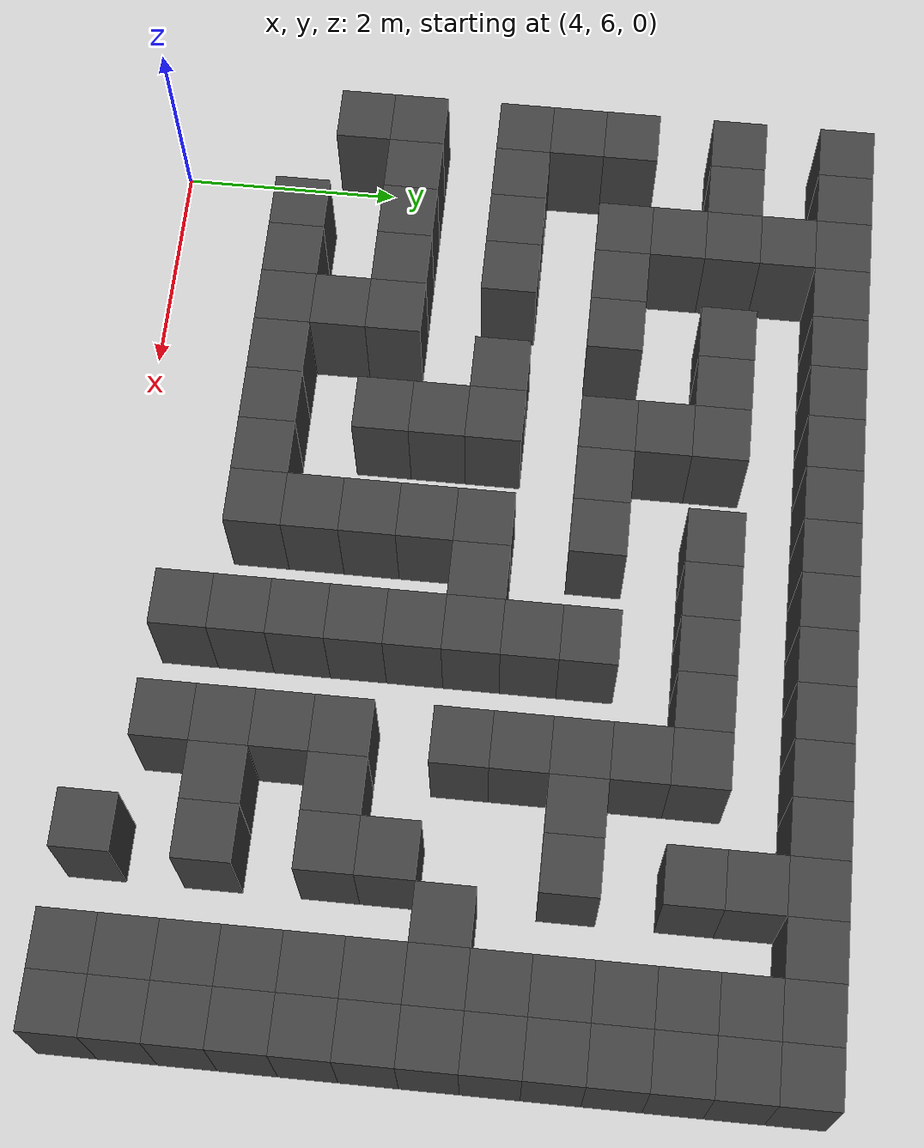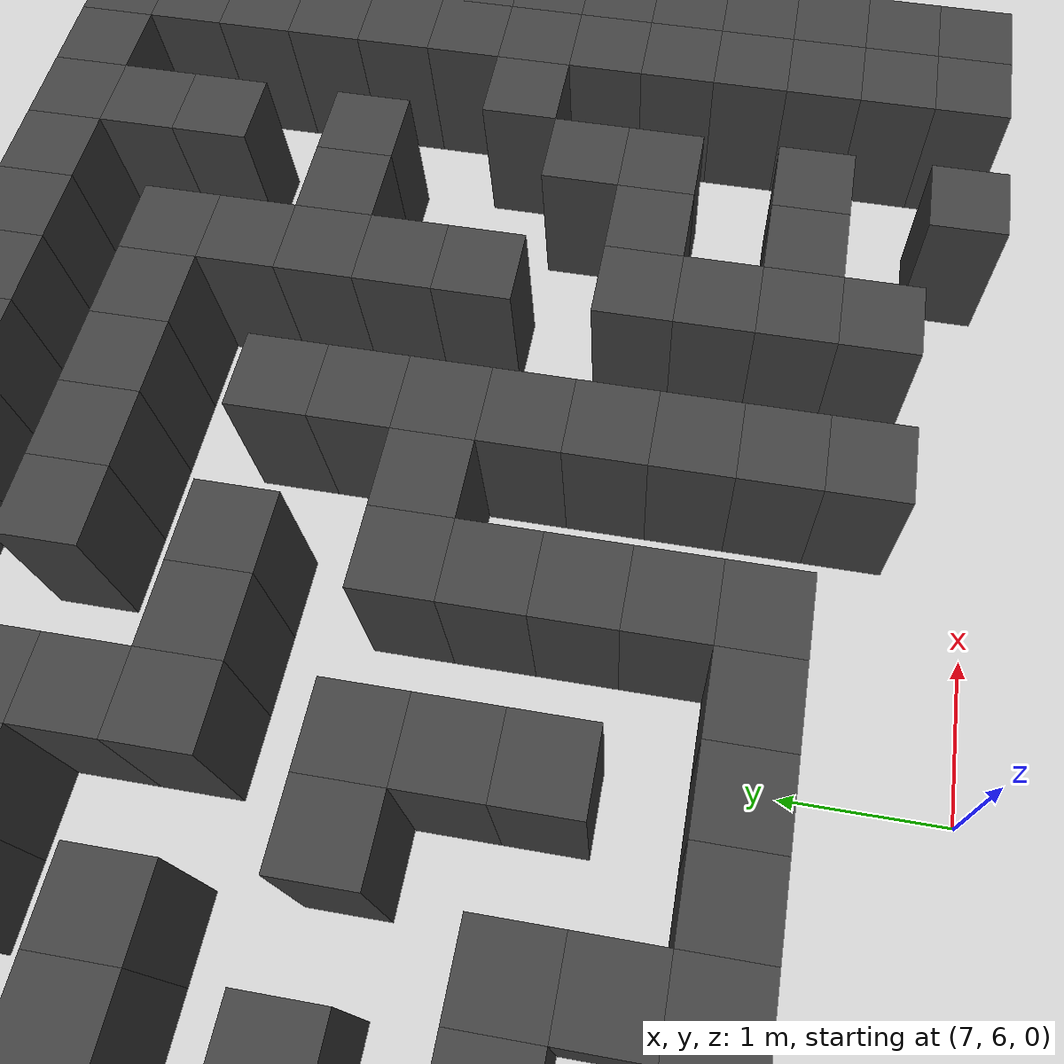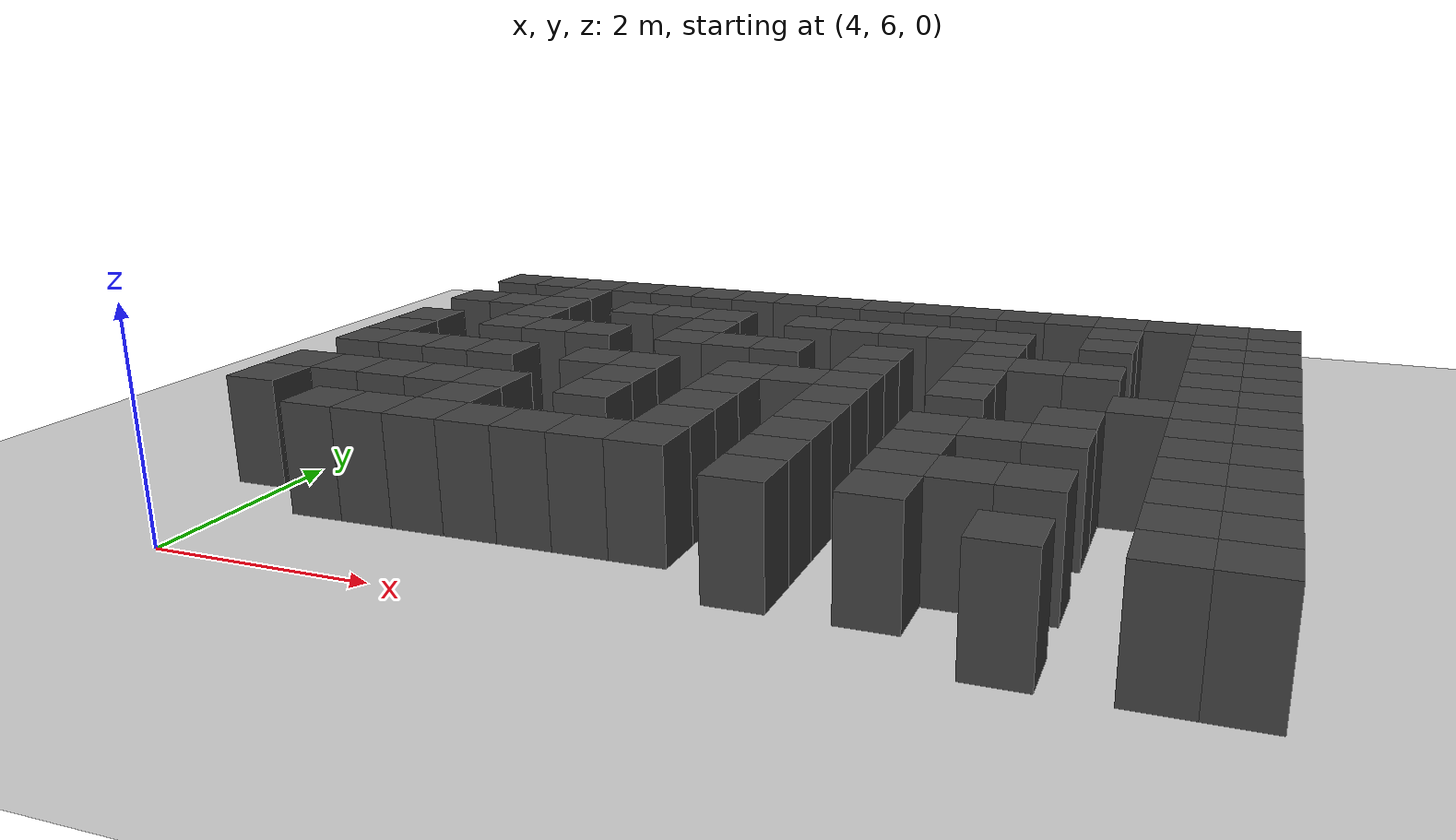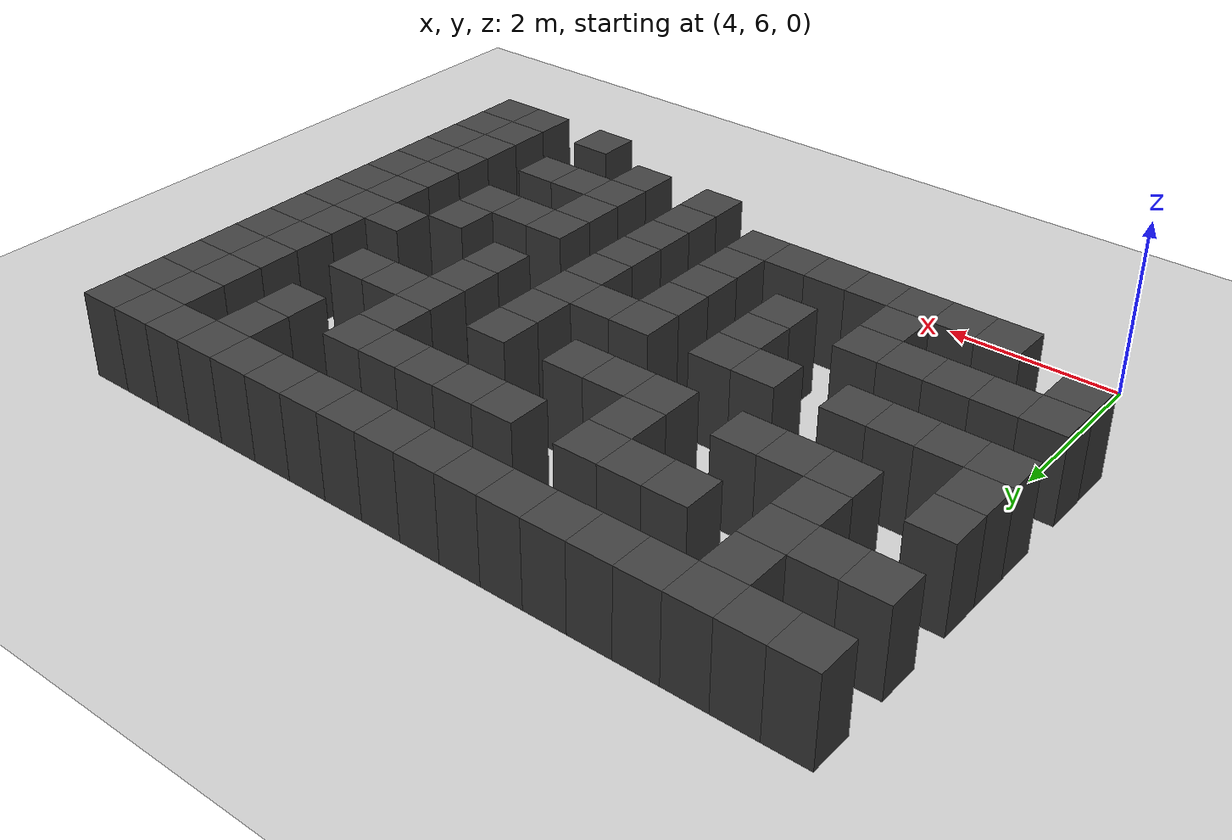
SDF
<sdf version="1.7">
 <world name="map_18505">
  <model name="ground_plane">
   <static>true</static>
   <link name="link">
    <collision name="collision">
     <geometry><plane><normal>0 0 1</normal><size>200 200</size></plane></geometry>
    </collision>
    <visual name="visual">
     <geometry><plane><normal>0 0 1</normal><size>200 200</size></plane></geometry>
     <material><ambient>0.8 0.8 0.8 1</ambient><diffuse>0.8 0.8 0.8 1</diffuse></material>
    </visual>
   </link>
  </model>
  <model name="maze_environment">
   <static>true</static>
   <link name="wall_32">
    <pose>3.750 12.250 0.500 0 0 0</pose>
    <collision name="col"><geometry><box><size>0.5 0.5 1.0</size></box></geometry></collision>
    <visual name="vis">
     <geometry><box><size>0.5 0.5 1.0</size></box></geometry>
     <material><ambient>0.15 0.15 0.15 1</ambient><diffuse>0.25 0.25 0.25 1</diffuse></material>
    </visual>
   </link>
   <link name="wall_33">
    <pose>4.250 12.250 0.500 0 0 0</pose>
    <collision name="col"><geometry><box><size>0.5 0.5 1.0</size></box></geometry></collision>
    <visual name="vis">
     <geometry><box><size>0.5 0.5 1.0</size></box></geometry>
     <material><ambient>0.15 0.15 0.15 1</ambient><diffuse>0.25 0.25 0.25 1</diffuse></material>
    </visual>
   </link>
   <link name="wall_34">
    <pose>4.750 12.250 0.500 0 0 0</pose>
    <collision name="col"><geometry><box><size>0.5 0.5 1.0</size></box></geometry></collision>
    <visual name="vis">
     <geometry><box><size>0.5 0.5 1.0</size></box></geometry>
     <material><ambient>0.15 0.15 0.15 1</ambient><diffuse>0.25 0.25 0.25 1</diffuse></material>
    </visual>
   </link>
   <link name="wall_35">
    <pose>5.250 12.250 0.500 0 0 0</pose>
    <collision name="col"><geometry><box><size>0.5 0.5 1.0</size></box></geometry></collision>
    <visual name="vis">
     <geometry><box><size>0.5 0.5 1.0</size></box></geometry>
     <material><ambient>0.15 0.15 0.15 1</ambient><diffuse>0.25 0.25 0.25 1</diffuse></material>
    </visual>
   </link>
   <link name="wall_36">
    <pose>5.750 12.250 0.500 0 0 0</pose>
    <collision name="col"><geometry><box><size>0.5 0.5 1.0</size></box></geometry></collision>
    <visual name="vis">
     <geometry><box><size>0.5 0.5 1.0</size></box></geometry>
     <material><ambient>0.15 0.15 0.15 1</ambient><diffuse>0.25 0.25 0.25 1</diffuse></material>
    </visual>
   </link>
   <link name="wall_37">
    <pose>6.250 12.250 0.500 0 0 0</pose>
    <collision name="col"><geometry><box><size>0.5 0.5 1.0</size></box></geometry></collision>
    <visual name="vis">
     <geometry><box><size>0.5 0.5 1.0</size></box></geometry>
     <material><ambient>0.15 0.15 0.15 1</ambient><diffuse>0.25 0.25 0.25 1</diffuse></material>
    </visual>
   </link>
   <link name="wall_38">
    <pose>6.750 12.250 0.500 0 0 0</pose>
    <collision name="col"><geometry><box><size>0.5 0.5 1.0</size></box></geometry></collision>
    <visual name="vis">
     <geometry><box><size>0.5 0.5 1.0</size></box></geometry>
     <material><ambient>0.15 0.15 0.15 1</ambient><diffuse>0.25 0.25 0.25 1</diffuse></material>
    </visual>
   </link>
   <link name="wall_39">
    <pose>7.250 12.250 0.500 0 0 0</pose>
    <collision name="col"><geometry><box><size>0.5 0.5 1.0</size></box></geometry></collision>
    <visual name="vis">
     <geometry><box><size>0.5 0.5 1.0</size></box></geometry>
     <material><ambient>0.15 0.15 0.15 1</ambient><diffuse>0.25 0.25 0.25 1</diffuse></material>
    </visual>
   </link>
   <link name="wall_40">
    <pose>7.750 12.250 0.500 0 0 0</pose>
    <collision name="col"><geometry><box><size>0.5 0.5 1.0</size></box></geometry></collision>
    <visual name="vis">
     <geometry><box><size>0.5 0.5 1.0</size></box></geometry>
     <material><ambient>0.15 0.15 0.15 1</ambient><diffuse>0.25 0.25 0.25 1</diffuse></material>
    </visual>
   </link>
   <link name="wall_41">
    <pose>8.250 12.250 0.500 0 0 0</pose>
    <collision name="col"><geometry><box><size>0.5 0.5 1.0</size></box></geometry></collision>
    <visual name="vis">
     <geometry><box><size>0.5 0.5 1.0</size></box></geometry>
     <material><ambient>0.15 0.15 0.15 1</ambient><diffuse>0.25 0.25 0.25 1</diffuse></material>
    </visual>
   </link>
   <link name="wall_42">
    <pose>8.750 12.250 0.500 0 0 0</pose>
    <collision name="col"><geometry><box><size>0.5 0.5 1.0</size></box></geometry></collision>
    <visual name="vis">
     <geometry><box><size>0.5 0.5 1.0</size></box></geometry>
     <material><ambient>0.15 0.15 0.15 1</ambient><diffuse>0.25 0.25 0.25 1</diffuse></material>
    </visual>
   </link>
   <link name="wall_43">
    <pose>9.250 12.250 0.500 0 0 0</pose>
    <collision name="col"><geometry><box><size>0.5 0.5 1.0</size></box></geometry></collision>
    <visual name="vis">
     <geometry><box><size>0.5 0.5 1.0</size></box></geometry>
     <material><ambient>0.15 0.15 0.15 1</ambient><diffuse>0.25 0.25 0.25 1</diffuse></material>
    </visual>
   </link>
   <link name="wall_44">
    <pose>9.750 12.250 0.500 0 0 0</pose>
    <collision name="col"><geometry><box><size>0.5 0.5 1.0</size></box></geometry></collision>
    <visual name="vis">
     <geometry><box><size>0.5 0.5 1.0</size></box></geometry>
     <material><ambient>0.15 0.15 0.15 1</ambient><diffuse>0.25 0.25 0.25 1</diffuse></material>
    </visual>
   </link>
   <link name="wall_45">
    <pose>10.250 12.250 0.500 0 0 0</pose>
    <collision name="col"><geometry><box><size>0.5 0.5 1.0</size></box></geometry></collision>
    <visual name="vis">
     <geometry><box><size>0.5 0.5 1.0</size></box></geometry>
     <material><ambient>0.15 0.15 0.15 1</ambient><diffuse>0.25 0.25 0.25 1</diffuse></material>
    </visual>
   </link>
   <link name="wall_46">
    <pose>10.750 12.250 0.500 0 0 0</pose>
    <collision name="col"><geometry><box><size>0.5 0.5 1.0</size></box></geometry></collision>
    <visual name="vis">
     <geometry><box><size>0.5 0.5 1.0</size></box></geometry>
     <material><ambient>0.15 0.15 0.15 1</ambient><diffuse>0.25 0.25 0.25 1</diffuse></material>
    </visual>
   </link>
   <link name="wall_47">
    <pose>11.250 12.250 0.500 0 0 0</pose>
    <collision name="col"><geometry><box><size>0.5 0.5 1.0</size></box></geometry></collision>
    <visual name="vis">
     <geometry><box><size>0.5 0.5 1.0</size></box></geometry>
     <material><ambient>0.15 0.15 0.15 1</ambient><diffuse>0.25 0.25 0.25 1</diffuse></material>
    </visual>
   </link>
   <link name="wall_48">
    <pose>11.750 12.250 0.500 0 0 0</pose>
    <collision name="col"><geometry><box><size>0.5 0.5 1.0</size></box></geometry></collision>
    <visual name="vis">
     <geometry><box><size>0.5 0.5 1.0</size></box></geometry>
     <material><ambient>0.15 0.15 0.15 1</ambient><diffuse>0.25 0.25 0.25 1</diffuse></material>
    </visual>
   </link>
   <link name="wall_49">
    <pose>12.250 12.250 0.500 0 0 0</pose>
    <collision name="col"><geometry><box><size>0.5 0.5 1.0</size></box></geometry></collision>
    <visual name="vis">
     <geometry><box><size>0.5 0.5 1.0</size></box></geometry>
     <material><ambient>0.15 0.15 0.15 1</ambient><diffuse>0.25 0.25 0.25 1</diffuse></material>
    </visual>
   </link>
   <link name="wall_55">
    <pose>4.750 11.750 0.500 0 0 0</pose>
    <collision name="col"><geometry><box><size>0.5 0.5 1.0</size></box></geometry></collision>
    <visual name="vis">
     <geometry><box><size>0.5 0.5 1.0</size></box></geometry>
     <material><ambient>0.15 0.15 0.15 1</ambient><diffuse>0.25 0.25 0.25 1</diffuse></material>
    </visual>
   </link>
   <link name="wall_56">
    <pose>10.750 11.750 0.500 0 0 0</pose>
    <collision name="col"><geometry><box><size>0.5 0.5 1.0</size></box></geometry></collision>
    <visual name="vis">
     <geometry><box><size>0.5 0.5 1.0</size></box></geometry>
     <material><ambient>0.15 0.15 0.15 1</ambient><diffuse>0.25 0.25 0.25 1</diffuse></material>
    </visual>
   </link>
   <link name="wall_57">
    <pose>11.750 11.750 0.500 0 0 0</pose>
    <collision name="col"><geometry><box><size>0.5 0.5 1.0</size></box></geometry></collision>
    <visual name="vis">
     <geometry><box><size>0.5 0.5 1.0</size></box></geometry>
     <material><ambient>0.15 0.15 0.15 1</ambient><diffuse>0.25 0.25 0.25 1</diffuse></material>
    </visual>
   </link>
   <link name="wall_58">
    <pose>12.250 11.750 0.500 0 0 0</pose>
    <collision name="col"><geometry><box><size>0.5 0.5 1.0</size></box></geometry></collision>
    <visual name="vis">
     <geometry><box><size>0.5 0.5 1.0</size></box></geometry>
     <material><ambient>0.15 0.15 0.15 1</ambient><diffuse>0.25 0.25 0.25 1</diffuse></material>
    </visual>
   </link>
   <link name="wall_81">
    <pose>3.750 11.250 0.500 0 0 0</pose>
    <collision name="col"><geometry><box><size>0.5 0.5 1.0</size></box></geometry></collision>
    <visual name="vis">
     <geometry><box><size>0.5 0.5 1.0</size></box></geometry>
     <material><ambient>0.15 0.15 0.15 1</ambient><diffuse>0.25 0.25 0.25 1</diffuse></material>
    </visual>
   </link>
   <link name="wall_82">
    <pose>4.250 11.250 0.500 0 0 0</pose>
    <collision name="col"><geometry><box><size>0.5 0.5 1.0</size></box></geometry></collision>
    <visual name="vis">
     <geometry><box><size>0.5 0.5 1.0</size></box></geometry>
     <material><ambient>0.15 0.15 0.15 1</ambient><diffuse>0.25 0.25 0.25 1</diffuse></material>
    </visual>
   </link>
   <link name="wall_83">
    <pose>4.750 11.250 0.500 0 0 0</pose>
    <collision name="col"><geometry><box><size>0.5 0.5 1.0</size></box></geometry></collision>
    <visual name="vis">
     <geometry><box><size>0.5 0.5 1.0</size></box></geometry>
     <material><ambient>0.15 0.15 0.15 1</ambient><diffuse>0.25 0.25 0.25 1</diffuse></material>
    </visual>
   </link>
   <link name="wall_84">
    <pose>5.750 11.250 0.500 0 0 0</pose>
    <collision name="col"><geometry><box><size>0.5 0.5 1.0</size></box></geometry></collision>
    <visual name="vis">
     <geometry><box><size>0.5 0.5 1.0</size></box></geometry>
     <material><ambient>0.15 0.15 0.15 1</ambient><diffuse>0.25 0.25 0.25 1</diffuse></material>
    </visual>
   </link>
   <link name="wall_85">
    <pose>6.250 11.250 0.500 0 0 0</pose>
    <collision name="col"><geometry><box><size>0.5 0.5 1.0</size></box></geometry></collision>
    <visual name="vis">
     <geometry><box><size>0.5 0.5 1.0</size></box></geometry>
     <material><ambient>0.15 0.15 0.15 1</ambient><diffuse>0.25 0.25 0.25 1</diffuse></material>
    </visual>
   </link>
   <link name="wall_86">
    <pose>6.750 11.250 0.500 0 0 0</pose>
    <collision name="col"><geometry><box><size>0.5 0.5 1.0</size></box></geometry></collision>
    <visual name="vis">
     <geometry><box><size>0.5 0.5 1.0</size></box></geometry>
     <material><ambient>0.15 0.15 0.15 1</ambient><diffuse>0.25 0.25 0.25 1</diffuse></material>
    </visual>
   </link>
   <link name="wall_87">
    <pose>7.750 11.250 0.500 0 0 0</pose>
    <collision name="col"><geometry><box><size>0.5 0.5 1.0</size></box></geometry></collision>
    <visual name="vis">
     <geometry><box><size>0.5 0.5 1.0</size></box></geometry>
     <material><ambient>0.15 0.15 0.15 1</ambient><diffuse>0.25 0.25 0.25 1</diffuse></material>
    </visual>
   </link>
   <link name="wall_88">
    <pose>8.250 11.250 0.500 0 0 0</pose>
    <collision name="col"><geometry><box><size>0.5 0.5 1.0</size></box></geometry></collision>
    <visual name="vis">
     <geometry><box><size>0.5 0.5 1.0</size></box></geometry>
     <material><ambient>0.15 0.15 0.15 1</ambient><diffuse>0.25 0.25 0.25 1</diffuse></material>
    </visual>
   </link>
   <link name="wall_89">
    <pose>8.750 11.250 0.500 0 0 0</pose>
    <collision name="col"><geometry><box><size>0.5 0.5 1.0</size></box></geometry></collision>
    <visual name="vis">
     <geometry><box><size>0.5 0.5 1.0</size></box></geometry>
     <material><ambient>0.15 0.15 0.15 1</ambient><diffuse>0.25 0.25 0.25 1</diffuse></material>
    </visual>
   </link>
   <link name="wall_90">
    <pose>9.250 11.250 0.500 0 0 0</pose>
    <collision name="col"><geometry><box><size>0.5 0.5 1.0</size></box></geometry></collision>
    <visual name="vis">
     <geometry><box><size>0.5 0.5 1.0</size></box></geometry>
     <material><ambient>0.15 0.15 0.15 1</ambient><diffuse>0.25 0.25 0.25 1</diffuse></material>
    </visual>
   </link>
   <link name="wall_91">
    <pose>9.750 11.250 0.500 0 0 0</pose>
    <collision name="col"><geometry><box><size>0.5 0.5 1.0</size></box></geometry></collision>
    <visual name="vis">
     <geometry><box><size>0.5 0.5 1.0</size></box></geometry>
     <material><ambient>0.15 0.15 0.15 1</ambient><diffuse>0.25 0.25 0.25 1</diffuse></material>
    </visual>
   </link>
   <link name="wall_92">
    <pose>10.750 11.250 0.500 0 0 0</pose>
    <collision name="col"><geometry><box><size>0.5 0.5 1.0</size></box></geometry></collision>
    <visual name="vis">
     <geometry><box><size>0.5 0.5 1.0</size></box></geometry>
     <material><ambient>0.15 0.15 0.15 1</ambient><diffuse>0.25 0.25 0.25 1</diffuse></material>
    </visual>
   </link>
   <link name="wall_93">
    <pose>11.750 11.250 0.500 0 0 0</pose>
    <collision name="col"><geometry><box><size>0.5 0.5 1.0</size></box></geometry></collision>
    <visual name="vis">
     <geometry><box><size>0.5 0.5 1.0</size></box></geometry>
     <material><ambient>0.15 0.15 0.15 1</ambient><diffuse>0.25 0.25 0.25 1</diffuse></material>
    </visual>
   </link>
   <link name="wall_94">
    <pose>12.250 11.250 0.500 0 0 0</pose>
    <collision name="col"><geometry><box><size>0.5 0.5 1.0</size></box></geometry></collision>
    <visual name="vis">
     <geometry><box><size>0.5 0.5 1.0</size></box></geometry>
     <material><ambient>0.15 0.15 0.15 1</ambient><diffuse>0.25 0.25 0.25 1</diffuse></material>
    </visual>
   </link>
   <link name="wall_103">
    <pose>4.750 10.750 0.500 0 0 0</pose>
    <collision name="col"><geometry><box><size>0.5 0.5 1.0</size></box></geometry></collision>
    <visual name="vis">
     <geometry><box><size>0.5 0.5 1.0</size></box></geometry>
     <material><ambient>0.15 0.15 0.15 1</ambient><diffuse>0.25 0.25 0.25 1</diffuse></material>
    </visual>
   </link>
   <link name="wall_104">
    <pose>6.750 10.750 0.500 0 0 0</pose>
    <collision name="col"><geometry><box><size>0.5 0.5 1.0</size></box></geometry></collision>
    <visual name="vis">
     <geometry><box><size>0.5 0.5 1.0</size></box></geometry>
     <material><ambient>0.15 0.15 0.15 1</ambient><diffuse>0.25 0.25 0.25 1</diffuse></material>
    </visual>
   </link>
   <link name="wall_105">
    <pose>9.750 10.750 0.500 0 0 0</pose>
    <collision name="col"><geometry><box><size>0.5 0.5 1.0</size></box></geometry></collision>
    <visual name="vis">
     <geometry><box><size>0.5 0.5 1.0</size></box></geometry>
     <material><ambient>0.15 0.15 0.15 1</ambient><diffuse>0.25 0.25 0.25 1</diffuse></material>
    </visual>
   </link>
   <link name="wall_106">
    <pose>11.750 10.750 0.500 0 0 0</pose>
    <collision name="col"><geometry><box><size>0.5 0.5 1.0</size></box></geometry></collision>
    <visual name="vis">
     <geometry><box><size>0.5 0.5 1.0</size></box></geometry>
     <material><ambient>0.15 0.15 0.15 1</ambient><diffuse>0.25 0.25 0.25 1</diffuse></material>
    </visual>
   </link>
   <link name="wall_107">
    <pose>12.250 10.750 0.500 0 0 0</pose>
    <collision name="col"><geometry><box><size>0.5 0.5 1.0</size></box></geometry></collision>
    <visual name="vis">
     <geometry><box><size>0.5 0.5 1.0</size></box></geometry>
     <material><ambient>0.15 0.15 0.15 1</ambient><diffuse>0.25 0.25 0.25 1</diffuse></material>
    </visual>
   </link>
   <link name="wall_132">
    <pose>3.750 10.250 0.500 0 0 0</pose>
    <collision name="col"><geometry><box><size>0.5 0.5 1.0</size></box></geometry></collision>
    <visual name="vis">
     <geometry><box><size>0.5 0.5 1.0</size></box></geometry>
     <material><ambient>0.15 0.15 0.15 1</ambient><diffuse>0.25 0.25 0.25 1</diffuse></material>
    </visual>
   </link>
   <link name="wall_133">
    <pose>4.750 10.250 0.500 0 0 0</pose>
    <collision name="col"><geometry><box><size>0.5 0.5 1.0</size></box></geometry></collision>
    <visual name="vis">
     <geometry><box><size>0.5 0.5 1.0</size></box></geometry>
     <material><ambient>0.15 0.15 0.15 1</ambient><diffuse>0.25 0.25 0.25 1</diffuse></material>
    </visual>
   </link>
   <link name="wall_134">
    <pose>5.250 10.250 0.500 0 0 0</pose>
    <collision name="col"><geometry><box><size>0.5 0.5 1.0</size></box></geometry></collision>
    <visual name="vis">
     <geometry><box><size>0.5 0.5 1.0</size></box></geometry>
     <material><ambient>0.15 0.15 0.15 1</ambient><diffuse>0.25 0.25 0.25 1</diffuse></material>
    </visual>
   </link>
   <link name="wall_135">
    <pose>5.750 10.250 0.500 0 0 0</pose>
    <collision name="col"><geometry><box><size>0.5 0.5 1.0</size></box></geometry></collision>
    <visual name="vis">
     <geometry><box><size>0.5 0.5 1.0</size></box></geometry>
     <material><ambient>0.15 0.15 0.15 1</ambient><diffuse>0.25 0.25 0.25 1</diffuse></material>
    </visual>
   </link>
   <link name="wall_136">
    <pose>6.750 10.250 0.500 0 0 0</pose>
    <collision name="col"><geometry><box><size>0.5 0.5 1.0</size></box></geometry></collision>
    <visual name="vis">
     <geometry><box><size>0.5 0.5 1.0</size></box></geometry>
     <material><ambient>0.15 0.15 0.15 1</ambient><diffuse>0.25 0.25 0.25 1</diffuse></material>
    </visual>
   </link>
   <link name="wall_137">
    <pose>7.250 10.250 0.500 0 0 0</pose>
    <collision name="col"><geometry><box><size>0.5 0.5 1.0</size></box></geometry></collision>
    <visual name="vis">
     <geometry><box><size>0.5 0.5 1.0</size></box></geometry>
     <material><ambient>0.15 0.15 0.15 1</ambient><diffuse>0.25 0.25 0.25 1</diffuse></material>
    </visual>
   </link>
   <link name="wall_138">
    <pose>7.750 10.250 0.500 0 0 0</pose>
    <collision name="col"><geometry><box><size>0.5 0.5 1.0</size></box></geometry></collision>
    <visual name="vis">
     <geometry><box><size>0.5 0.5 1.0</size></box></geometry>
     <material><ambient>0.15 0.15 0.15 1</ambient><diffuse>0.25 0.25 0.25 1</diffuse></material>
    </visual>
   </link>
   <link name="wall_139">
    <pose>8.750 10.250 0.500 0 0 0</pose>
    <collision name="col"><geometry><box><size>0.5 0.5 1.0</size></box></geometry></collision>
    <visual name="vis">
     <geometry><box><size>0.5 0.5 1.0</size></box></geometry>
     <material><ambient>0.15 0.15 0.15 1</ambient><diffuse>0.25 0.25 0.25 1</diffuse></material>
    </visual>
   </link>
   <link name="wall_140">
    <pose>9.750 10.250 0.500 0 0 0</pose>
    <collision name="col"><geometry><box><size>0.5 0.5 1.0</size></box></geometry></collision>
    <visual name="vis">
     <geometry><box><size>0.5 0.5 1.0</size></box></geometry>
     <material><ambient>0.15 0.15 0.15 1</ambient><diffuse>0.25 0.25 0.25 1</diffuse></material>
    </visual>
   </link>
   <link name="wall_141">
    <pose>10.250 10.250 0.500 0 0 0</pose>
    <collision name="col"><geometry><box><size>0.5 0.5 1.0</size></box></geometry></collision>
    <visual name="vis">
     <geometry><box><size>0.5 0.5 1.0</size></box></geometry>
     <material><ambient>0.15 0.15 0.15 1</ambient><diffuse>0.25 0.25 0.25 1</diffuse></material>
    </visual>
   </link>
   <link name="wall_142">
    <pose>10.750 10.250 0.500 0 0 0</pose>
    <collision name="col"><geometry><box><size>0.5 0.5 1.0</size></box></geometry></collision>
    <visual name="vis">
     <geometry><box><size>0.5 0.5 1.0</size></box></geometry>
     <material><ambient>0.15 0.15 0.15 1</ambient><diffuse>0.25 0.25 0.25 1</diffuse></material>
    </visual>
   </link>
   <link name="wall_143">
    <pose>11.750 10.250 0.500 0 0 0</pose>
    <collision name="col"><geometry><box><size>0.5 0.5 1.0</size></box></geometry></collision>
    <visual name="vis">
     <geometry><box><size>0.5 0.5 1.0</size></box></geometry>
     <material><ambient>0.15 0.15 0.15 1</ambient><diffuse>0.25 0.25 0.25 1</diffuse></material>
    </visual>
   </link>
   <link name="wall_144">
    <pose>12.250 10.250 0.500 0 0 0</pose>
    <collision name="col"><geometry><box><size>0.5 0.5 1.0</size></box></geometry></collision>
    <visual name="vis">
     <geometry><box><size>0.5 0.5 1.0</size></box></geometry>
     <material><ambient>0.15 0.15 0.15 1</ambient><diffuse>0.25 0.25 0.25 1</diffuse></material>
    </visual>
   </link>
   <link name="wall_153">
    <pose>3.750 9.750 0.500 0 0 0</pose>
    <collision name="col"><geometry><box><size>0.5 0.5 1.0</size></box></geometry></collision>
    <visual name="vis">
     <geometry><box><size>0.5 0.5 1.0</size></box></geometry>
     <material><ambient>0.15 0.15 0.15 1</ambient><diffuse>0.25 0.25 0.25 1</diffuse></material>
    </visual>
   </link>
   <link name="wall_154">
    <pose>8.750 9.750 0.500 0 0 0</pose>
    <collision name="col"><geometry><box><size>0.5 0.5 1.0</size></box></geometry></collision>
    <visual name="vis">
     <geometry><box><size>0.5 0.5 1.0</size></box></geometry>
     <material><ambient>0.15 0.15 0.15 1</ambient><diffuse>0.25 0.25 0.25 1</diffuse></material>
    </visual>
   </link>
   <link name="wall_155">
    <pose>9.750 9.750 0.500 0 0 0</pose>
    <collision name="col"><geometry><box><size>0.5 0.5 1.0</size></box></geometry></collision>
    <visual name="vis">
     <geometry><box><size>0.5 0.5 1.0</size></box></geometry>
     <material><ambient>0.15 0.15 0.15 1</ambient><diffuse>0.25 0.25 0.25 1</diffuse></material>
    </visual>
   </link>
   <link name="wall_156">
    <pose>11.750 9.750 0.500 0 0 0</pose>
    <collision name="col"><geometry><box><size>0.5 0.5 1.0</size></box></geometry></collision>
    <visual name="vis">
     <geometry><box><size>0.5 0.5 1.0</size></box></geometry>
     <material><ambient>0.15 0.15 0.15 1</ambient><diffuse>0.25 0.25 0.25 1</diffuse></material>
    </visual>
   </link>
   <link name="wall_157">
    <pose>12.250 9.750 0.500 0 0 0</pose>
    <collision name="col"><geometry><box><size>0.5 0.5 1.0</size></box></geometry></collision>
    <visual name="vis">
     <geometry><box><size>0.5 0.5 1.0</size></box></geometry>
     <material><ambient>0.15 0.15 0.15 1</ambient><diffuse>0.25 0.25 0.25 1</diffuse></material>
    </visual>
   </link>
   <link name="wall_180">
    <pose>3.750 9.250 0.500 0 0 0</pose>
    <collision name="col"><geometry><box><size>0.5 0.5 1.0</size></box></geometry></collision>
    <visual name="vis">
     <geometry><box><size>0.5 0.5 1.0</size></box></geometry>
     <material><ambient>0.15 0.15 0.15 1</ambient><diffuse>0.25 0.25 0.25 1</diffuse></material>
    </visual>
   </link>
   <link name="wall_181">
    <pose>4.250 9.250 0.500 0 0 0</pose>
    <collision name="col"><geometry><box><size>0.5 0.5 1.0</size></box></geometry></collision>
    <visual name="vis">
     <geometry><box><size>0.5 0.5 1.0</size></box></geometry>
     <material><ambient>0.15 0.15 0.15 1</ambient><diffuse>0.25 0.25 0.25 1</diffuse></material>
    </visual>
   </link>
   <link name="wall_182">
    <pose>4.750 9.250 0.500 0 0 0</pose>
    <collision name="col"><geometry><box><size>0.5 0.5 1.0</size></box></geometry></collision>
    <visual name="vis">
     <geometry><box><size>0.5 0.5 1.0</size></box></geometry>
     <material><ambient>0.15 0.15 0.15 1</ambient><diffuse>0.25 0.25 0.25 1</diffuse></material>
    </visual>
   </link>
   <link name="wall_183">
    <pose>5.250 9.250 0.500 0 0 0</pose>
    <collision name="col"><geometry><box><size>0.5 0.5 1.0</size></box></geometry></collision>
    <visual name="vis">
     <geometry><box><size>0.5 0.5 1.0</size></box></geometry>
     <material><ambient>0.15 0.15 0.15 1</ambient><diffuse>0.25 0.25 0.25 1</diffuse></material>
    </visual>
   </link>
   <link name="wall_184">
    <pose>6.250 9.250 0.500 0 0 0</pose>
    <collision name="col"><geometry><box><size>0.5 0.5 1.0</size></box></geometry></collision>
    <visual name="vis">
     <geometry><box><size>0.5 0.5 1.0</size></box></geometry>
     <material><ambient>0.15 0.15 0.15 1</ambient><diffuse>0.25 0.25 0.25 1</diffuse></material>
    </visual>
   </link>
   <link name="wall_185">
    <pose>6.750 9.250 0.500 0 0 0</pose>
    <collision name="col"><geometry><box><size>0.5 0.5 1.0</size></box></geometry></collision>
    <visual name="vis">
     <geometry><box><size>0.5 0.5 1.0</size></box></geometry>
     <material><ambient>0.15 0.15 0.15 1</ambient><diffuse>0.25 0.25 0.25 1</diffuse></material>
    </visual>
   </link>
   <link name="wall_186">
    <pose>7.750 9.250 0.500 0 0 0</pose>
    <collision name="col"><geometry><box><size>0.5 0.5 1.0</size></box></geometry></collision>
    <visual name="vis">
     <geometry><box><size>0.5 0.5 1.0</size></box></geometry>
     <material><ambient>0.15 0.15 0.15 1</ambient><diffuse>0.25 0.25 0.25 1</diffuse></material>
    </visual>
   </link>
   <link name="wall_187">
    <pose>8.250 9.250 0.500 0 0 0</pose>
    <collision name="col"><geometry><box><size>0.5 0.5 1.0</size></box></geometry></collision>
    <visual name="vis">
     <geometry><box><size>0.5 0.5 1.0</size></box></geometry>
     <material><ambient>0.15 0.15 0.15 1</ambient><diffuse>0.25 0.25 0.25 1</diffuse></material>
    </visual>
   </link>
   <link name="wall_188">
    <pose>8.750 9.250 0.500 0 0 0</pose>
    <collision name="col"><geometry><box><size>0.5 0.5 1.0</size></box></geometry></collision>
    <visual name="vis">
     <geometry><box><size>0.5 0.5 1.0</size></box></geometry>
     <material><ambient>0.15 0.15 0.15 1</ambient><diffuse>0.25 0.25 0.25 1</diffuse></material>
    </visual>
   </link>
   <link name="wall_189">
    <pose>9.750 9.250 0.500 0 0 0</pose>
    <collision name="col"><geometry><box><size>0.5 0.5 1.0</size></box></geometry></collision>
    <visual name="vis">
     <geometry><box><size>0.5 0.5 1.0</size></box></geometry>
     <material><ambient>0.15 0.15 0.15 1</ambient><diffuse>0.25 0.25 0.25 1</diffuse></material>
    </visual>
   </link>
   <link name="wall_190">
    <pose>11.250 9.250 0.500 0 0 0</pose>
    <collision name="col"><geometry><box><size>0.5 0.5 1.0</size></box></geometry></collision>
    <visual name="vis">
     <geometry><box><size>0.5 0.5 1.0</size></box></geometry>
     <material><ambient>0.15 0.15 0.15 1</ambient><diffuse>0.25 0.25 0.25 1</diffuse></material>
    </visual>
   </link>
   <link name="wall_191">
    <pose>11.750 9.250 0.500 0 0 0</pose>
    <collision name="col"><geometry><box><size>0.5 0.5 1.0</size></box></geometry></collision>
    <visual name="vis">
     <geometry><box><size>0.5 0.5 1.0</size></box></geometry>
     <material><ambient>0.15 0.15 0.15 1</ambient><diffuse>0.25 0.25 0.25 1</diffuse></material>
    </visual>
   </link>
   <link name="wall_192">
    <pose>12.250 9.250 0.500 0 0 0</pose>
    <collision name="col"><geometry><box><size>0.5 0.5 1.0</size></box></geometry></collision>
    <visual name="vis">
     <geometry><box><size>0.5 0.5 1.0</size></box></geometry>
     <material><ambient>0.15 0.15 0.15 1</ambient><diffuse>0.25 0.25 0.25 1</diffuse></material>
    </visual>
   </link>
   <link name="wall_204">
    <pose>6.750 8.750 0.500 0 0 0</pose>
    <collision name="col"><geometry><box><size>0.5 0.5 1.0</size></box></geometry></collision>
    <visual name="vis">
     <geometry><box><size>0.5 0.5 1.0</size></box></geometry>
     <material><ambient>0.15 0.15 0.15 1</ambient><diffuse>0.25 0.25 0.25 1</diffuse></material>
    </visual>
   </link>
   <link name="wall_205">
    <pose>7.750 8.750 0.500 0 0 0</pose>
    <collision name="col"><geometry><box><size>0.5 0.5 1.0</size></box></geometry></collision>
    <visual name="vis">
     <geometry><box><size>0.5 0.5 1.0</size></box></geometry>
     <material><ambient>0.15 0.15 0.15 1</ambient><diffuse>0.25 0.25 0.25 1</diffuse></material>
    </visual>
   </link>
   <link name="wall_206">
    <pose>8.750 8.750 0.500 0 0 0</pose>
    <collision name="col"><geometry><box><size>0.5 0.5 1.0</size></box></geometry></collision>
    <visual name="vis">
     <geometry><box><size>0.5 0.5 1.0</size></box></geometry>
     <material><ambient>0.15 0.15 0.15 1</ambient><diffuse>0.25 0.25 0.25 1</diffuse></material>
    </visual>
   </link>
   <link name="wall_207">
    <pose>10.750 8.750 0.500 0 0 0</pose>
    <collision name="col"><geometry><box><size>0.5 0.5 1.0</size></box></geometry></collision>
    <visual name="vis">
     <geometry><box><size>0.5 0.5 1.0</size></box></geometry>
     <material><ambient>0.15 0.15 0.15 1</ambient><diffuse>0.25 0.25 0.25 1</diffuse></material>
    </visual>
   </link>
   <link name="wall_208">
    <pose>11.750 8.750 0.500 0 0 0</pose>
    <collision name="col"><geometry><box><size>0.5 0.5 1.0</size></box></geometry></collision>
    <visual name="vis">
     <geometry><box><size>0.5 0.5 1.0</size></box></geometry>
     <material><ambient>0.15 0.15 0.15 1</ambient><diffuse>0.25 0.25 0.25 1</diffuse></material>
    </visual>
   </link>
   <link name="wall_209">
    <pose>12.250 8.750 0.500 0 0 0</pose>
    <collision name="col"><geometry><box><size>0.5 0.5 1.0</size></box></geometry></collision>
    <visual name="vis">
     <geometry><box><size>0.5 0.5 1.0</size></box></geometry>
     <material><ambient>0.15 0.15 0.15 1</ambient><diffuse>0.25 0.25 0.25 1</diffuse></material>
    </visual>
   </link>
   <link name="wall_230">
    <pose>3.750 8.250 0.500 0 0 0</pose>
    <collision name="col"><geometry><box><size>0.5 0.5 1.0</size></box></geometry></collision>
    <visual name="vis">
     <geometry><box><size>0.5 0.5 1.0</size></box></geometry>
     <material><ambient>0.15 0.15 0.15 1</ambient><diffuse>0.25 0.25 0.25 1</diffuse></material>
    </visual>
   </link>
   <link name="wall_231">
    <pose>4.250 8.250 0.500 0 0 0</pose>
    <collision name="col"><geometry><box><size>0.5 0.5 1.0</size></box></geometry></collision>
    <visual name="vis">
     <geometry><box><size>0.5 0.5 1.0</size></box></geometry>
     <material><ambient>0.15 0.15 0.15 1</ambient><diffuse>0.25 0.25 0.25 1</diffuse></material>
    </visual>
   </link>
   <link name="wall_232">
    <pose>4.750 8.250 0.500 0 0 0</pose>
    <collision name="col"><geometry><box><size>0.5 0.5 1.0</size></box></geometry></collision>
    <visual name="vis">
     <geometry><box><size>0.5 0.5 1.0</size></box></geometry>
     <material><ambient>0.15 0.15 0.15 1</ambient><diffuse>0.25 0.25 0.25 1</diffuse></material>
    </visual>
   </link>
   <link name="wall_233">
    <pose>5.250 8.250 0.500 0 0 0</pose>
    <collision name="col"><geometry><box><size>0.5 0.5 1.0</size></box></geometry></collision>
    <visual name="vis">
     <geometry><box><size>0.5 0.5 1.0</size></box></geometry>
     <material><ambient>0.15 0.15 0.15 1</ambient><diffuse>0.25 0.25 0.25 1</diffuse></material>
    </visual>
   </link>
   <link name="wall_234">
    <pose>5.750 8.250 0.500 0 0 0</pose>
    <collision name="col"><geometry><box><size>0.5 0.5 1.0</size></box></geometry></collision>
    <visual name="vis">
     <geometry><box><size>0.5 0.5 1.0</size></box></geometry>
     <material><ambient>0.15 0.15 0.15 1</ambient><diffuse>0.25 0.25 0.25 1</diffuse></material>
    </visual>
   </link>
   <link name="wall_235">
    <pose>6.750 8.250 0.500 0 0 0</pose>
    <collision name="col"><geometry><box><size>0.5 0.5 1.0</size></box></geometry></collision>
    <visual name="vis">
     <geometry><box><size>0.5 0.5 1.0</size></box></geometry>
     <material><ambient>0.15 0.15 0.15 1</ambient><diffuse>0.25 0.25 0.25 1</diffuse></material>
    </visual>
   </link>
   <link name="wall_236">
    <pose>7.750 8.250 0.500 0 0 0</pose>
    <collision name="col"><geometry><box><size>0.5 0.5 1.0</size></box></geometry></collision>
    <visual name="vis">
     <geometry><box><size>0.5 0.5 1.0</size></box></geometry>
     <material><ambient>0.15 0.15 0.15 1</ambient><diffuse>0.25 0.25 0.25 1</diffuse></material>
    </visual>
   </link>
   <link name="wall_237">
    <pose>8.750 8.250 0.500 0 0 0</pose>
    <collision name="col"><geometry><box><size>0.5 0.5 1.0</size></box></geometry></collision>
    <visual name="vis">
     <geometry><box><size>0.5 0.5 1.0</size></box></geometry>
     <material><ambient>0.15 0.15 0.15 1</ambient><diffuse>0.25 0.25 0.25 1</diffuse></material>
    </visual>
   </link>
   <link name="wall_238">
    <pose>9.750 8.250 0.500 0 0 0</pose>
    <collision name="col"><geometry><box><size>0.5 0.5 1.0</size></box></geometry></collision>
    <visual name="vis">
     <geometry><box><size>0.5 0.5 1.0</size></box></geometry>
     <material><ambient>0.15 0.15 0.15 1</ambient><diffuse>0.25 0.25 0.25 1</diffuse></material>
    </visual>
   </link>
   <link name="wall_239">
    <pose>10.250 8.250 0.500 0 0 0</pose>
    <collision name="col"><geometry><box><size>0.5 0.5 1.0</size></box></geometry></collision>
    <visual name="vis">
     <geometry><box><size>0.5 0.5 1.0</size></box></geometry>
     <material><ambient>0.15 0.15 0.15 1</ambient><diffuse>0.25 0.25 0.25 1</diffuse></material>
    </visual>
   </link>
   <link name="wall_240">
    <pose>10.750 8.250 0.500 0 0 0</pose>
    <collision name="col"><geometry><box><size>0.5 0.5 1.0</size></box></geometry></collision>
    <visual name="vis">
     <geometry><box><size>0.5 0.5 1.0</size></box></geometry>
     <material><ambient>0.15 0.15 0.15 1</ambient><diffuse>0.25 0.25 0.25 1</diffuse></material>
    </visual>
   </link>
   <link name="wall_241">
    <pose>11.750 8.250 0.500 0 0 0</pose>
    <collision name="col"><geometry><box><size>0.5 0.5 1.0</size></box></geometry></collision>
    <visual name="vis">
     <geometry><box><size>0.5 0.5 1.0</size></box></geometry>
     <material><ambient>0.15 0.15 0.15 1</ambient><diffuse>0.25 0.25 0.25 1</diffuse></material>
    </visual>
   </link>
   <link name="wall_242">
    <pose>12.250 8.250 0.500 0 0 0</pose>
    <collision name="col"><geometry><box><size>0.5 0.5 1.0</size></box></geometry></collision>
    <visual name="vis">
     <geometry><box><size>0.5 0.5 1.0</size></box></geometry>
     <material><ambient>0.15 0.15 0.15 1</ambient><diffuse>0.25 0.25 0.25 1</diffuse></material>
    </visual>
   </link>
   <link name="wall_250">
    <pose>3.750 7.750 0.500 0 0 0</pose>
    <collision name="col"><geometry><box><size>0.5 0.5 1.0</size></box></geometry></collision>
    <visual name="vis">
     <geometry><box><size>0.5 0.5 1.0</size></box></geometry>
     <material><ambient>0.15 0.15 0.15 1</ambient><diffuse>0.25 0.25 0.25 1</diffuse></material>
    </visual>
   </link>
   <link name="wall_251">
    <pose>5.750 7.750 0.500 0 0 0</pose>
    <collision name="col"><geometry><box><size>0.5 0.5 1.0</size></box></geometry></collision>
    <visual name="vis">
     <geometry><box><size>0.5 0.5 1.0</size></box></geometry>
     <material><ambient>0.15 0.15 0.15 1</ambient><diffuse>0.25 0.25 0.25 1</diffuse></material>
    </visual>
   </link>
   <link name="wall_252">
    <pose>7.750 7.750 0.500 0 0 0</pose>
    <collision name="col"><geometry><box><size>0.5 0.5 1.0</size></box></geometry></collision>
    <visual name="vis">
     <geometry><box><size>0.5 0.5 1.0</size></box></geometry>
     <material><ambient>0.15 0.15 0.15 1</ambient><diffuse>0.25 0.25 0.25 1</diffuse></material>
    </visual>
   </link>
   <link name="wall_253">
    <pose>8.750 7.750 0.500 0 0 0</pose>
    <collision name="col"><geometry><box><size>0.5 0.5 1.0</size></box></geometry></collision>
    <visual name="vis">
     <geometry><box><size>0.5 0.5 1.0</size></box></geometry>
     <material><ambient>0.15 0.15 0.15 1</ambient><diffuse>0.25 0.25 0.25 1</diffuse></material>
    </visual>
   </link>
   <link name="wall_254">
    <pose>9.750 7.750 0.500 0 0 0</pose>
    <collision name="col"><geometry><box><size>0.5 0.5 1.0</size></box></geometry></collision>
    <visual name="vis">
     <geometry><box><size>0.5 0.5 1.0</size></box></geometry>
     <material><ambient>0.15 0.15 0.15 1</ambient><diffuse>0.25 0.25 0.25 1</diffuse></material>
    </visual>
   </link>
   <link name="wall_255">
    <pose>11.750 7.750 0.500 0 0 0</pose>
    <collision name="col"><geometry><box><size>0.5 0.5 1.0</size></box></geometry></collision>
    <visual name="vis">
     <geometry><box><size>0.5 0.5 1.0</size></box></geometry>
     <material><ambient>0.15 0.15 0.15 1</ambient><diffuse>0.25 0.25 0.25 1</diffuse></material>
    </visual>
   </link>
   <link name="wall_256">
    <pose>12.250 7.750 0.500 0 0 0</pose>
    <collision name="col"><geometry><box><size>0.5 0.5 1.0</size></box></geometry></collision>
    <visual name="vis">
     <geometry><box><size>0.5 0.5 1.0</size></box></geometry>
     <material><ambient>0.15 0.15 0.15 1</ambient><diffuse>0.25 0.25 0.25 1</diffuse></material>
    </visual>
   </link>
   <link name="wall_281">
    <pose>4.750 7.250 0.500 0 0 0</pose>
    <collision name="col"><geometry><box><size>0.5 0.5 1.0</size></box></geometry></collision>
    <visual name="vis">
     <geometry><box><size>0.5 0.5 1.0</size></box></geometry>
     <material><ambient>0.15 0.15 0.15 1</ambient><diffuse>0.25 0.25 0.25 1</diffuse></material>
    </visual>
   </link>
   <link name="wall_282">
    <pose>5.250 7.250 0.500 0 0 0</pose>
    <collision name="col"><geometry><box><size>0.5 0.5 1.0</size></box></geometry></collision>
    <visual name="vis">
     <geometry><box><size>0.5 0.5 1.0</size></box></geometry>
     <material><ambient>0.15 0.15 0.15 1</ambient><diffuse>0.25 0.25 0.25 1</diffuse></material>
    </visual>
   </link>
   <link name="wall_283">
    <pose>5.750 7.250 0.500 0 0 0</pose>
    <collision name="col"><geometry><box><size>0.5 0.5 1.0</size></box></geometry></collision>
    <visual name="vis">
     <geometry><box><size>0.5 0.5 1.0</size></box></geometry>
     <material><ambient>0.15 0.15 0.15 1</ambient><diffuse>0.25 0.25 0.25 1</diffuse></material>
    </visual>
   </link>
   <link name="wall_284">
    <pose>6.250 7.250 0.500 0 0 0</pose>
    <collision name="col"><geometry><box><size>0.5 0.5 1.0</size></box></geometry></collision>
    <visual name="vis">
     <geometry><box><size>0.5 0.5 1.0</size></box></geometry>
     <material><ambient>0.15 0.15 0.15 1</ambient><diffuse>0.25 0.25 0.25 1</diffuse></material>
    </visual>
   </link>
   <link name="wall_285">
    <pose>6.750 7.250 0.500 0 0 0</pose>
    <collision name="col"><geometry><box><size>0.5 0.5 1.0</size></box></geometry></collision>
    <visual name="vis">
     <geometry><box><size>0.5 0.5 1.0</size></box></geometry>
     <material><ambient>0.15 0.15 0.15 1</ambient><diffuse>0.25 0.25 0.25 1</diffuse></material>
    </visual>
   </link>
   <link name="wall_286">
    <pose>7.250 7.250 0.500 0 0 0</pose>
    <collision name="col"><geometry><box><size>0.5 0.5 1.0</size></box></geometry></collision>
    <visual name="vis">
     <geometry><box><size>0.5 0.5 1.0</size></box></geometry>
     <material><ambient>0.15 0.15 0.15 1</ambient><diffuse>0.25 0.25 0.25 1</diffuse></material>
    </visual>
   </link>
   <link name="wall_287">
    <pose>7.750 7.250 0.500 0 0 0</pose>
    <collision name="col"><geometry><box><size>0.5 0.5 1.0</size></box></geometry></collision>
    <visual name="vis">
     <geometry><box><size>0.5 0.5 1.0</size></box></geometry>
     <material><ambient>0.15 0.15 0.15 1</ambient><diffuse>0.25 0.25 0.25 1</diffuse></material>
    </visual>
   </link>
   <link name="wall_288">
    <pose>8.750 7.250 0.500 0 0 0</pose>
    <collision name="col"><geometry><box><size>0.5 0.5 1.0</size></box></geometry></collision>
    <visual name="vis">
     <geometry><box><size>0.5 0.5 1.0</size></box></geometry>
     <material><ambient>0.15 0.15 0.15 1</ambient><diffuse>0.25 0.25 0.25 1</diffuse></material>
    </visual>
   </link>
   <link name="wall_289">
    <pose>9.750 7.250 0.500 0 0 0</pose>
    <collision name="col"><geometry><box><size>0.5 0.5 1.0</size></box></geometry></collision>
    <visual name="vis">
     <geometry><box><size>0.5 0.5 1.0</size></box></geometry>
     <material><ambient>0.15 0.15 0.15 1</ambient><diffuse>0.25 0.25 0.25 1</diffuse></material>
    </visual>
   </link>
   <link name="wall_290">
    <pose>10.250 7.250 0.500 0 0 0</pose>
    <collision name="col"><geometry><box><size>0.5 0.5 1.0</size></box></geometry></collision>
    <visual name="vis">
     <geometry><box><size>0.5 0.5 1.0</size></box></geometry>
     <material><ambient>0.15 0.15 0.15 1</ambient><diffuse>0.25 0.25 0.25 1</diffuse></material>
    </visual>
   </link>
   <link name="wall_291">
    <pose>10.750 7.250 0.500 0 0 0</pose>
    <collision name="col"><geometry><box><size>0.5 0.5 1.0</size></box></geometry></collision>
    <visual name="vis">
     <geometry><box><size>0.5 0.5 1.0</size></box></geometry>
     <material><ambient>0.15 0.15 0.15 1</ambient><diffuse>0.25 0.25 0.25 1</diffuse></material>
    </visual>
   </link>
   <link name="wall_292">
    <pose>11.750 7.250 0.500 0 0 0</pose>
    <collision name="col"><geometry><box><size>0.5 0.5 1.0</size></box></geometry></collision>
    <visual name="vis">
     <geometry><box><size>0.5 0.5 1.0</size></box></geometry>
     <material><ambient>0.15 0.15 0.15 1</ambient><diffuse>0.25 0.25 0.25 1</diffuse></material>
    </visual>
   </link>
   <link name="wall_293">
    <pose>12.250 7.250 0.500 0 0 0</pose>
    <collision name="col"><geometry><box><size>0.5 0.5 1.0</size></box></geometry></collision>
    <visual name="vis">
     <geometry><box><size>0.5 0.5 1.0</size></box></geometry>
     <material><ambient>0.15 0.15 0.15 1</ambient><diffuse>0.25 0.25 0.25 1</diffuse></material>
    </visual>
   </link>
   <link name="wall_300">
    <pose>8.750 6.750 0.500 0 0 0</pose>
    <collision name="col"><geometry><box><size>0.5 0.5 1.0</size></box></geometry></collision>
    <visual name="vis">
     <geometry><box><size>0.5 0.5 1.0</size></box></geometry>
     <material><ambient>0.15 0.15 0.15 1</ambient><diffuse>0.25 0.25 0.25 1</diffuse></material>
    </visual>
   </link>
   <link name="wall_301">
    <pose>9.750 6.750 0.500 0 0 0</pose>
    <collision name="col"><geometry><box><size>0.5 0.5 1.0</size></box></geometry></collision>
    <visual name="vis">
     <geometry><box><size>0.5 0.5 1.0</size></box></geometry>
     <material><ambient>0.15 0.15 0.15 1</ambient><diffuse>0.25 0.25 0.25 1</diffuse></material>
    </visual>
   </link>
   <link name="wall_302">
    <pose>11.750 6.750 0.500 0 0 0</pose>
    <collision name="col"><geometry><box><size>0.5 0.5 1.0</size></box></geometry></collision>
    <visual name="vis">
     <geometry><box><size>0.5 0.5 1.0</size></box></geometry>
     <material><ambient>0.15 0.15 0.15 1</ambient><diffuse>0.25 0.25 0.25 1</diffuse></material>
    </visual>
   </link>
   <link name="wall_303">
    <pose>12.250 6.750 0.500 0 0 0</pose>
    <collision name="col"><geometry><box><size>0.5 0.5 1.0</size></box></geometry></collision>
    <visual name="vis">
     <geometry><box><size>0.5 0.5 1.0</size></box></geometry>
     <material><ambient>0.15 0.15 0.15 1</ambient><diffuse>0.25 0.25 0.25 1</diffuse></material>
    </visual>
   </link>
   <link name="wall_340">
    <pose>10.750 6.250 0.500 0 0 0</pose>
    <collision name="col"><geometry><box><size>0.5 0.5 1.0</size></box></geometry></collision>
    <visual name="vis">
     <geometry><box><size>0.5 0.5 1.0</size></box></geometry>
     <material><ambient>0.15 0.15 0.15 1</ambient><diffuse>0.25 0.25 0.25 1</diffuse></material>
    </visual>
   </link>
   <link name="wall_341">
    <pose>11.750 6.250 0.500 0 0 0</pose>
    <collision name="col"><geometry><box><size>0.5 0.5 1.0</size></box></geometry></collision>
    <visual name="vis">
     <geometry><box><size>0.5 0.5 1.0</size></box></geometry>
     <material><ambient>0.15 0.15 0.15 1</ambient><diffuse>0.25 0.25 0.25 1</diffuse></material>
    </visual>
   </link>
   <link name="wall_342">
    <pose>12.250 6.250 0.500 0 0 0</pose>
    <collision name="col"><geometry><box><size>0.5 0.5 1.0</size></box></geometry></collision>
    <visual name="vis">
     <geometry><box><size>0.5 0.5 1.0</size></box></geometry>
     <material><ambient>0.15 0.15 0.15 1</ambient><diffuse>0.25 0.25 0.25 1</diffuse></material>
    </visual>
   </link>
  </model>
 </world>
</sdf>
